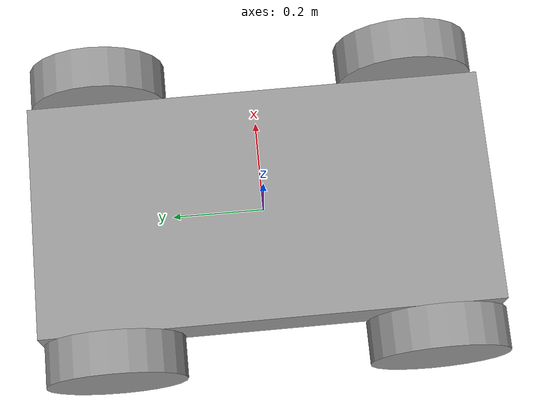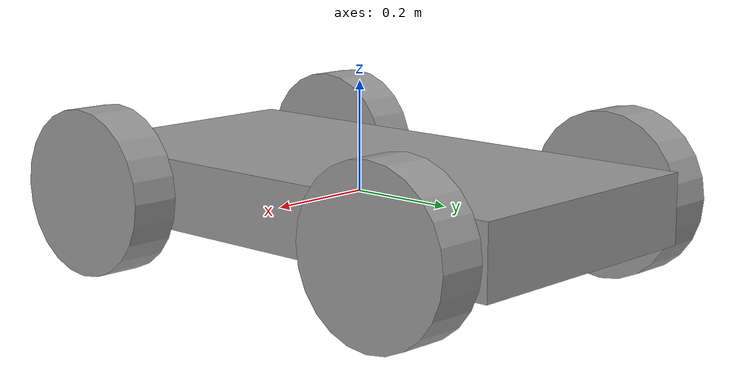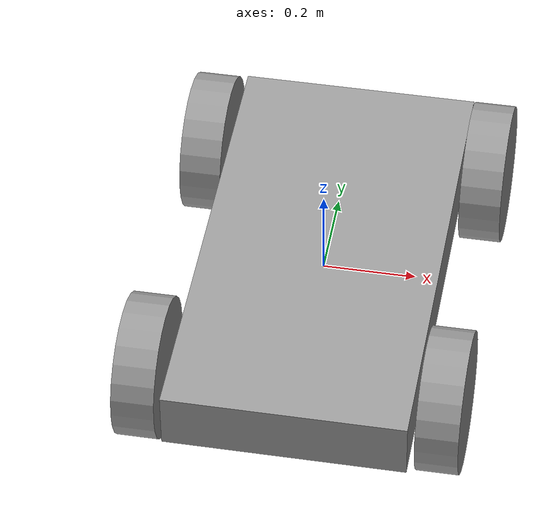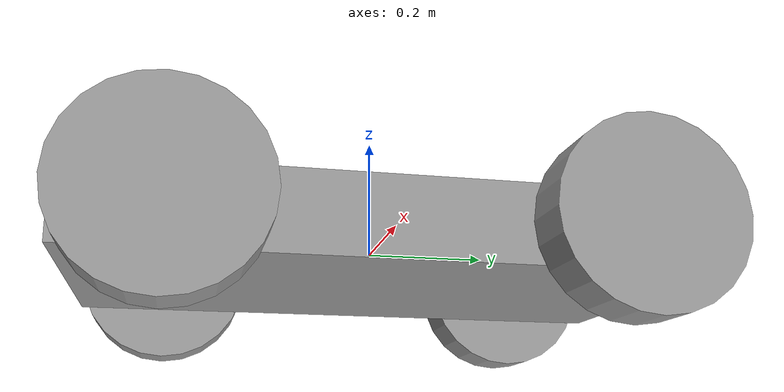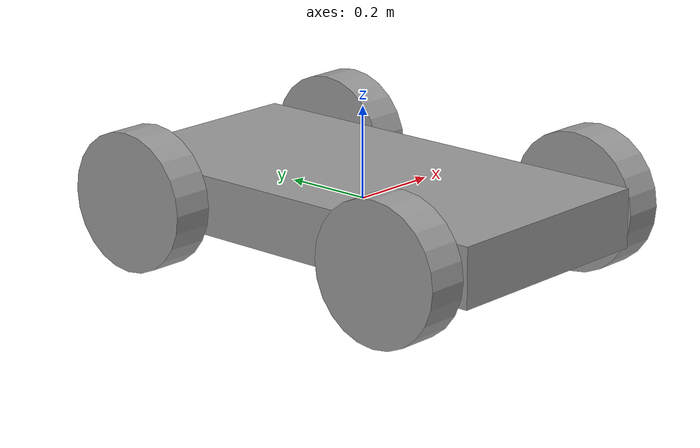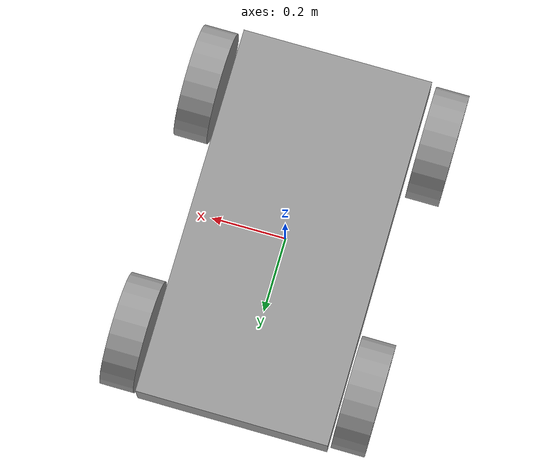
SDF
<?xml version='1.0'?>
<sdf version='1.6'>
  <model name='Car2'>
    <link name='link_1'>
      <pose frame=''>-0.000448 0.001389 0 0 -0 0</pose>
      <inertial>
        <mass>0.0661104</mass>
        <inertia>
          <ixx>0.00560002</ixx>
          <ixy>0</ixy>
          <ixz>0</ixz>
          <iyy>0.00155207</iyy>
          <iyz>0</iyz>
          <izz>0.00697045</izz>
        </inertia>
        <pose frame=''>0 0 0 0 -0 0</pose>
      </inertial>
      <gravity>1</gravity>
      <self_collide>0</self_collide>
      <kinematic>0</kinematic>
      <visual name='visual'>
        <pose frame=''>0 0 0 0 -0 0</pose>
        <geometry>
          <box>
            <size>0.515012 1 0.128395</size>
          </box>
        </geometry>
        <material>
          <lighting>1</lighting>
          <script>
            <uri>file://media/materials/scripts/gazebo.material</uri>
            <name>Gazebo/Grey</name>
          </script>
          <shader type='pixel'>
            <normal_map>__default__</normal_map>
          </shader>
          <ambient>0.3 0.3 0.3 1</ambient>
          <diffuse>0.7 0.7 0.7 1</diffuse>
          <specular>0.01 0.01 0.01 1</specular>
          <emissive>0 0 0 1</emissive>
        </material>
        <transparency>0</transparency>
        <cast_shadows>1</cast_shadows>
      </visual>
      <collision name='collision'>
        <laser_retro>0</laser_retro>
        <max_contacts>10</max_contacts>
        <pose frame=''>0 0 0 0 -0 0</pose>
        <geometry>
          <box>
            <size>0.515012 1 0.128395</size>
          </box>
        </geometry>
        <surface>
          <friction>
            <ode>
              <mu>1</mu>
              <mu2>1</mu2>
              <fdir1>0 0 0</fdir1>
              <slip1>0</slip1>
              <slip2>0</slip2>
            </ode>
            <torsional>
              <coefficient>1</coefficient>
              <patch_radius>0</patch_radius>
              <surface_radius>0</surface_radius>
              <use_patch_radius>1</use_patch_radius>
              <ode>
                <slip>0</slip>
              </ode>
            </torsional>
          </friction>
          <bounce>
            <restitution_coefficient>0</restitution_coefficient>
            <threshold>1e+06</threshold>
          </bounce>
          <contact>
            <collide_without_contact>0</collide_without_contact>
            <collide_without_contact_bitmask>1</collide_without_contact_bitmask>
            <collide_bitmask>1</collide_bitmask>
            <ode>
              <soft_cfm>0</soft_cfm>
              <soft_erp>0.2</soft_erp>
              <kp>1e+13</kp>
              <kd>1</kd>
              <max_vel>0.01</max_vel>
              <min_depth>0</min_depth>
            </ode>
            <bullet>
              <split_impulse>1</split_impulse>
              <split_impulse_penetration_threshold>-0.01</split_impulse_penetration_threshold>
              <soft_cfm>0</soft_cfm>
              <soft_erp>0.2</soft_erp>
              <kp>1e+13</kp>
              <kd>1</kd>
            </bullet>
          </contact>
        </surface>
      </collision>
    </link>
    <link name='link_2'>
      <pose frame=''>0.311776 0.348074 0 0 1.56821 0</pose>
      <inertial>
        <mass>0.00833939</mass>
        <inertia>
          <ixx>5.3665e-05</ixx>
          <ixy>0</ixy>
          <ixz>0</ixz>
          <iyy>5.3665e-05</iyy>
          <iyz>0</iyz>
          <izz>9.59171e-05</izz>
        </inertia>
        <pose frame=''>0 0 0 0 -0 0</pose>
      </inertial>
      <visual name='visual'>
        <pose frame=''>0 0 0 0 -0 0</pose>
        <geometry>
          <cylinder>
            <radius>0.151669</radius>
            <length>0.0906163</length>
          </cylinder>
        </geometry>
        <material>
          <lighting>1</lighting>
          <script>
            <uri>file://media/materials/scripts/gazebo.material</uri>
            <name>Gazebo/Grey</name>
          </script>
          <shader type='pixel'/>
          <ambient>0.3 0.3 0.3 1</ambient>
          <diffuse>0.7 0.7 0.7 1</diffuse>
          <specular>0.01 0.01 0.01 1</specular>
          <emissive>0 0 0 1</emissive>
        </material>
        <transparency>0</transparency>
        <cast_shadows>1</cast_shadows>
      </visual>
      <collision name='collision'>
        <laser_retro>0</laser_retro>
        <max_contacts>10</max_contacts>
        <pose frame=''>0 0 0 0 -0 0</pose>
        <geometry>
          <cylinder>
            <radius>0.151669</radius>
            <length>0.090616</length>
          </cylinder>
        </geometry>
        <surface>
          <friction>
            <ode>
              <mu>1</mu>
              <mu2>1</mu2>
              <fdir1>0 0 0</fdir1>
              <slip1>0</slip1>
              <slip2>0</slip2>
            </ode>
            <torsional>
              <coefficient>1</coefficient>
              <patch_radius>0</patch_radius>
              <surface_radius>0</surface_radius>
              <use_patch_radius>1</use_patch_radius>
              <ode>
                <slip>0</slip>
              </ode>
            </torsional>
          </friction>
          <bounce>
            <restitution_coefficient>0</restitution_coefficient>
            <threshold>1e+06</threshold>
          </bounce>
          <contact>
            <collide_without_contact>0</collide_without_contact>
            <collide_without_contact_bitmask>1</collide_without_contact_bitmask>
            <collide_bitmask>1</collide_bitmask>
            <ode>
              <soft_cfm>0</soft_cfm>
              <soft_erp>0.2</soft_erp>
              <kp>1e+13</kp>
              <kd>1</kd>
              <max_vel>0.01</max_vel>
              <min_depth>0</min_depth>
            </ode>
            <bullet>
              <split_impulse>1</split_impulse>
              <split_impulse_penetration_threshold>-0.01</split_impulse_penetration_threshold>
              <soft_cfm>0</soft_cfm>
              <soft_erp>0.2</soft_erp>
              <kp>1e+13</kp>
              <kd>1</kd>
            </bullet>
          </contact>
        </surface>
      </collision>
    </link>
    <link name='link_2_clone'>
      <pose frame=''>0.316366 -0.34368 0 0 1.56821 0</pose>
      <inertial>
        <mass>0.00833939</mass>
        <inertia>
          <ixx>5.3665e-05</ixx>
          <ixy>0</ixy>
          <ixz>0</ixz>
          <iyy>5.3665e-05</iyy>
          <iyz>0</iyz>
          <izz>9.59171e-05</izz>
        </inertia>
        <pose frame=''>0 0 0 0 -0 0</pose>
      </inertial>
      <visual name='visual'>
        <pose frame=''>0 0 0 0 -0 0</pose>
        <geometry>
          <cylinder>
            <radius>0.151669</radius>
            <length>0.0906163</length>
          </cylinder>
        </geometry>
        <material>
          <lighting>1</lighting>
          <script>
            <uri>file://media/materials/scripts/gazebo.material</uri>
            <name>Gazebo/Grey</name>
          </script>
          <shader type='pixel'/>
          <ambient>0.3 0.3 0.3 1</ambient>
          <diffuse>0.7 0.7 0.7 1</diffuse>
          <specular>0.01 0.01 0.01 1</specular>
          <emissive>0 0 0 1</emissive>
        </material>
        <transparency>0</transparency>
        <cast_shadows>1</cast_shadows>
      </visual>
      <collision name='collision'>
        <laser_retro>0</laser_retro>
        <max_contacts>10</max_contacts>
        <pose frame=''>0 0 0 0 -0 0</pose>
        <geometry>
          <cylinder>
            <radius>0.151669</radius>
            <length>0.090616</length>
          </cylinder>
        </geometry>
        <surface>
          <friction>
            <ode>
              <mu>1</mu>
              <mu2>1</mu2>
              <fdir1>0 0 0</fdir1>
              <slip1>0</slip1>
              <slip2>0</slip2>
            </ode>
            <torsional>
              <coefficient>1</coefficient>
              <patch_radius>0</patch_radius>
              <surface_radius>0</surface_radius>
              <use_patch_radius>1</use_patch_radius>
              <ode>
                <slip>0</slip>
              </ode>
            </torsional>
          </friction>
          <bounce>
            <restitution_coefficient>0</restitution_coefficient>
            <threshold>1e+06</threshold>
          </bounce>
          <contact>
            <collide_without_contact>0</collide_without_contact>
            <collide_without_contact_bitmask>1</collide_without_contact_bitmask>
            <collide_bitmask>1</collide_bitmask>
            <ode>
              <soft_cfm>0</soft_cfm>
              <soft_erp>0.2</soft_erp>
              <kp>1e+13</kp>
              <kd>1</kd>
              <max_vel>0.01</max_vel>
              <min_depth>0</min_depth>
            </ode>
            <bullet>
              <split_impulse>1</split_impulse>
              <split_impulse_penetration_threshold>-0.01</split_impulse_penetration_threshold>
              <soft_cfm>0</soft_cfm>
              <soft_erp>0.2</soft_erp>
              <kp>1e+13</kp>
              <kd>1</kd>
            </bullet>
          </contact>
        </surface>
      </collision>
    </link>
    <link name='link_2_clone_0'>
      <pose frame=''>-0.310495 0.343876 0 0 1.56821 0</pose>
      <inertial>
        <mass>0.00833939</mass>
        <inertia>
          <ixx>5.3665e-05</ixx>
          <ixy>0</ixy>
          <ixz>0</ixz>
          <iyy>5.3665e-05</iyy>
          <iyz>0</iyz>
          <izz>9.59171e-05</izz>
        </inertia>
        <pose frame=''>0 0 0 0 -0 0</pose>
      </inertial>
      <visual name='visual'>
        <pose frame=''>0 0 0 0 -0 0</pose>
        <geometry>
          <cylinder>
            <radius>0.151669</radius>
            <length>0.0906163</length>
          </cylinder>
        </geometry>
        <material>
          <lighting>1</lighting>
          <script>
            <uri>file://media/materials/scripts/gazebo.material</uri>
            <name>Gazebo/Grey</name>
          </script>
          <shader type='pixel'/>
          <ambient>0.3 0.3 0.3 1</ambient>
          <diffuse>0.7 0.7 0.7 1</diffuse>
          <specular>0.01 0.01 0.01 1</specular>
          <emissive>0 0 0 1</emissive>
        </material>
        <transparency>0</transparency>
        <cast_shadows>1</cast_shadows>
      </visual>
      <collision name='collision'>
        <laser_retro>0</laser_retro>
        <max_contacts>10</max_contacts>
        <pose frame=''>0 0 0 0 -0 0</pose>
        <geometry>
          <cylinder>
            <radius>0.151669</radius>
            <length>0.090616</length>
          </cylinder>
        </geometry>
        <surface>
          <friction>
            <ode>
              <mu>1</mu>
              <mu2>1</mu2>
              <fdir1>0 0 0</fdir1>
              <slip1>0</slip1>
              <slip2>0</slip2>
            </ode>
            <torsional>
              <coefficient>1</coefficient>
              <patch_radius>0</patch_radius>
              <surface_radius>0</surface_radius>
              <use_patch_radius>1</use_patch_radius>
              <ode>
                <slip>0</slip>
              </ode>
            </torsional>
          </friction>
          <bounce>
            <restitution_coefficient>0</restitution_coefficient>
            <threshold>1e+06</threshold>
          </bounce>
          <contact>
            <collide_without_contact>0</collide_without_contact>
            <collide_without_contact_bitmask>1</collide_without_contact_bitmask>
            <collide_bitmask>1</collide_bitmask>
            <ode>
              <soft_cfm>0</soft_cfm>
              <soft_erp>0.2</soft_erp>
              <kp>1e+13</kp>
              <kd>1</kd>
              <max_vel>0.01</max_vel>
              <min_depth>0</min_depth>
            </ode>
            <bullet>
              <split_impulse>1</split_impulse>
              <split_impulse_penetration_threshold>-0.01</split_impulse_penetration_threshold>
              <soft_cfm>0</soft_cfm>
              <soft_erp>0.2</soft_erp>
              <kp>1e+13</kp>
              <kd>1</kd>
            </bullet>
          </contact>
        </surface>
      </collision>
    </link>
    <link name='link_2_clone_1'>
      <pose frame=''>-0.317198 -0.349659 0 0 1.56821 0</pose>
      <inertial>
        <mass>0.00833939</mass>
        <inertia>
          <ixx>5.3665e-05</ixx>
          <ixy>0</ixy>
          <ixz>0</ixz>
          <iyy>5.3665e-05</iyy>
          <iyz>0</iyz>
          <izz>9.59171e-05</izz>
        </inertia>
        <pose frame=''>0 0 0 0 -0 0</pose>
      </inertial>
      <visual name='visual'>
        <pose frame=''>0 0 0 0 -0 0</pose>
        <geometry>
          <cylinder>
            <radius>0.151669</radius>
            <length>0.0906163</length>
          </cylinder>
        </geometry>
        <material>
          <lighting>1</lighting>
          <script>
            <uri>file://media/materials/scripts/gazebo.material</uri>
            <name>Gazebo/Grey</name>
          </script>
          <shader type='pixel'/>
          <ambient>0.3 0.3 0.3 1</ambient>
          <diffuse>0.7 0.7 0.7 1</diffuse>
          <specular>0.01 0.01 0.01 1</specular>
          <emissive>0 0 0 1</emissive>
        </material>
        <transparency>0</transparency>
        <cast_shadows>1</cast_shadows>
      </visual>
      <collision name='collision'>
        <laser_retro>0</laser_retro>
        <max_contacts>10</max_contacts>
        <pose frame=''>0 0 0 0 -0 0</pose>
        <geometry>
          <cylinder>
            <radius>0.151669</radius>
            <length>0.090616</length>
          </cylinder>
        </geometry>
        <surface>
          <friction>
            <ode>
              <mu>1</mu>
              <mu2>1</mu2>
              <fdir1>0 0 0</fdir1>
              <slip1>0</slip1>
              <slip2>0</slip2>
            </ode>
            <torsional>
              <coefficient>1</coefficient>
              <patch_radius>0</patch_radius>
              <surface_radius>0</surface_radius>
              <use_patch_radius>1</use_patch_radius>
              <ode>
                <slip>0</slip>
              </ode>
            </torsional>
          </friction>
          <bounce>
            <restitution_coefficient>0</restitution_coefficient>
            <threshold>1e+06</threshold>
          </bounce>
          <contact>
            <collide_without_contact>0</collide_without_contact>
            <collide_without_contact_bitmask>1</collide_without_contact_bitmask>
            <collide_bitmask>1</collide_bitmask>
            <ode>
              <soft_cfm>0</soft_cfm>
              <soft_erp>0.2</soft_erp>
              <kp>1e+13</kp>
              <kd>1</kd>
              <max_vel>0.01</max_vel>
              <min_depth>0</min_depth>
            </ode>
            <bullet>
              <split_impulse>1</split_impulse>
              <split_impulse_penetration_threshold>-0.01</split_impulse_penetration_threshold>
              <soft_cfm>0</soft_cfm>
              <soft_erp>0.2</soft_erp>
              <kp>1e+13</kp>
              <kd>1</kd>
            </bullet>
          </contact>
        </surface>
      </collision>
    </link>
    <joint name='link_1_JOINT_0' type='revolute'>
      <parent>link_1</parent>
      <child>link_2_clone_1</child>
      <pose frame=''>0 0 0 0 -0 0</pose>
      <axis>
        <xyz>1 0 0</xyz>
        <use_parent_model_frame>0</use_parent_model_frame>
        <limit>
          <lower>-1.79769e+308</lower>
          <upper>1.79769e+308</upper>
          <effort>-1</effort>
          <velocity>-1</velocity>
        </limit>
        <dynamics>
          <spring_reference>0</spring_reference>
          <spring_stiffness>0</spring_stiffness>
          <damping>0</damping>
        </dynamics>
      </axis>
      <physics>
        <ode>
          <limit>
            <cfm>0</cfm>
            <erp>0.2</erp>
          </limit>
          <suspension>
            <cfm>0</cfm>
            <erp>0.2</erp>
          </suspension>
        </ode>
      </physics>
    </joint>
    <joint name='link_1_JOINT_1' type='revolute'>
      <parent>link_1</parent>
      <child>link_2_clone</child>
      <pose frame=''>0 0 0 0 -0 0</pose>
      <axis>
        <xyz>1 0 0</xyz>
        <use_parent_model_frame>0</use_parent_model_frame>
        <limit>
          <lower>-1.79769e+308</lower>
          <upper>1.79769e+308</upper>
          <effort>-1</effort>
          <velocity>-1</velocity>
        </limit>
        <dynamics>
          <spring_reference>0</spring_reference>
          <spring_stiffness>0</spring_stiffness>
          <damping>0</damping>
        </dynamics>
      </axis>
      <physics>
        <ode>
          <limit>
            <cfm>0</cfm>
            <erp>0.2</erp>
          </limit>
          <suspension>
            <cfm>0</cfm>
            <erp>0.2</erp>
          </suspension>
        </ode>
      </physics>
    </joint>
    <joint name='link_1_JOINT_2' type='revolute'>
      <parent>link_1</parent>
      <child>link_2</child>
      <pose frame=''>0 0 0 0 -0 0</pose>
      <axis>
        <xyz>1 0 0</xyz>
        <use_parent_model_frame>0</use_parent_model_frame>
        <limit>
          <lower>-1.79769e+308</lower>
          <upper>1.79769e+308</upper>
          <effort>-1</effort>
          <velocity>-1</velocity>
        </limit>
        <dynamics>
          <spring_reference>0</spring_reference>
          <spring_stiffness>0</spring_stiffness>
          <damping>0</damping>
        </dynamics>
      </axis>
      <physics>
        <ode>
          <limit>
            <cfm>0</cfm>
            <erp>0.2</erp>
          </limit>
          <suspension>
            <cfm>0</cfm>
            <erp>0.2</erp>
          </suspension>
        </ode>
      </physics>
    </joint>
    <joint name='link_1_JOINT_3' type='revolute'>
      <parent>link_1</parent>
      <child>link_2_clone_0</child>
      <pose frame=''>0 0 0 0 -0 0</pose>
      <axis>
        <xyz>1 0 0</xyz>
        <use_parent_model_frame>0</use_parent_model_frame>
        <limit>
          <lower>-1.79769e+308</lower>
          <upper>1.79769e+308</upper>
          <effort>-1</effort>
          <velocity>-1</velocity>
        </limit>
        <dynamics>
          <spring_reference>0</spring_reference>
          <spring_stiffness>0</spring_stiffness>
          <damping>0</damping>
        </dynamics>
      </axis>
      <physics>
        <ode>
          <limit>
            <cfm>0</cfm>
            <erp>0.2</erp>
          </limit>
          <suspension>
            <cfm>0</cfm>
            <erp>0.2</erp>
          </suspension>
        </ode>
      </physics>
    </joint>
    <static>0</static>
    <allow_auto_disable>1</allow_auto_disable>
  </model>
</sdf>
